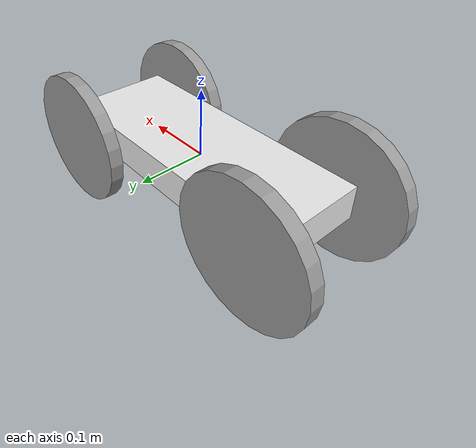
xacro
<?xml version="1.0"?>
<robot xmlns:xacro="http://www.ros.org/wiki/xacro" name="rover">
  <xacro:property name="wheel_radius" value="0.10" />
  <xacro:property name="wheel_width" value="0.02" />
  <xacro:property name="body_height" value="0.05" />
  <xacro:property name="body_width" value="0.15" />
  <xacro:property name="body_length" value="0.4" />
  <xacro:property name="leg_height" value="0.05" />
  <xacro:property name="leg_width" value="0.02" />
  <xacro:property name="leg_length" value="0.02" />

  <gazebo reference="body">
    <material>Gazebo/White</material>
    <mu1>0.2</mu1>
    <mu2>0.2</mu2>
 </gazebo>

  <link name="body">
    <visual>
      <geometry>
        <box size="${body_length} ${body_width} ${body_height}"/>
      </geometry>
    </visual>

    <collision>
      <geometry>
        <box size="${body_length} ${body_width} ${body_height}"/>
      </geometry>
    </collision>

    <inertial>
      <mass value="5"/>
      <inertia ixx="${(5/12) * (body_width * body_width + body_height* body_height)}" ixy="0" ixz="0" iyy="${(5/12) * (body_length * body_length + body_height * body_height)}" iyz="0" izz="${(5/12) * (body_width * body_width + body_length * body_length)}" />
    </inertial>
  </link>

  <link name="lLeg">
    <visual>
      <geometry>
        <box size="${leg_length} ${leg_width} ${leg_height}"/>
      </geometry>
    </visual>

    <collision>
      <geometry>
        <box size="${leg_length} ${leg_width} ${leg_height}"/>
      </geometry>
    </collision>

    <inertial>
      <mass value="1"/>
      <inertia ixx="${(1/12) * (leg_width * leg_width + leg_height* leg_height)}" ixy="0" ixz="0" iyy="${(1/12) * (leg_length * leg_length + leg_height * leg_height)}" iyz="0" izz="${(1/12) * (leg_width * leg_width + leg_length * leg_length)}" />
    </inertial>
  </link>

  <joint name="lDifJoint" type="continuous">
    <parent link="body"/>
    <child link="lLeg"/>
    <axis xyz="0 0 1"/>
    <origin xyz="${body_length/2 - 0.03} ${body_width/2 + wheel_width/2} -${body_height/2}"/>
  </joint>

  <link name="rLeg">
    <visual>
      <geometry>
        <box size="${leg_length} ${leg_width} ${leg_height}"/>
      </geometry>
    </visual>

    <collision>
      <geometry>
        <box size="${leg_length} ${leg_width} ${leg_height}"/>
      </geometry>
    </collision>

    <inertial>
      <mass value="1"/>
      <inertia ixx="${(1/12) * (leg_width * leg_width + leg_height* leg_height)}" ixy="0" ixz="0" iyy="${(1/12) * (leg_length * leg_length + leg_height * leg_height)}" iyz="0" izz="${(1/12) * (leg_width * leg_width + leg_length * leg_length)}" />
    </inertial>
  </link>

  <joint name="rDifJoint" type="continuous">
    <parent link="body"/>
    <child link="rLeg"/>
    <axis xyz="0 0 1"/>
    <origin xyz="${body_length/2 - 0.03} -${body_width/2 + wheel_width/2} -${body_height/2}"/>
  </joint>

  <xacro:macro name="wheel_link" params="name radius width mass">
    <gazebo reference="${name}">
      <material>Gazebo/Grey</material>
      <mu1>0.84</mu1>
      <mu2>0.84</mu2>
   </gazebo>

    <link name="${name}">
      <visual>
        <geometry>
          <cylinder length="${width}" radius="${radius}"/>
        </geometry>
      </visual>

      <collision>
        <geometry>
          <cylinder length="${width}" radius="${radius}"/>
        </geometry>
      </collision>

      <inertial>
        <mass value="${mass}"/>
        <inertia ixx="${(1/12) * mass * (3 * radius * radius + width * width)}" ixy="0" ixz="0" iyy="${(1/12) * mass * (3 * radius * radius + width * width)}" iyz="0" izz="${(1/2) * mass * radius * radius}"/>
      </inertial>
    </link>
  </xacro:macro>

  <xacro:wheel_link name="wFL" radius="${wheel_radius}" width="${wheel_width}" mass="2"/>

  <joint name="jFL" type="continuous">
    <parent link="lLeg"/>
    <child link="wFL"/>
    <axis xyz="0 0 1"/>
    <origin xyz="0 ${leg_width/2} ${leg_length/2}" rpy="${pi/2} 0 0" />
    <dynamics friction="0.5"/>
  </joint>

  <xacro:wheel_link name="wBL" radius="${wheel_radius}" width="${wheel_width}" mass="2"/>

  <joint name="jBL" type="continuous">
    <parent link="body"/>
    <child link="wBL"/>
    <axis xyz="0 0 1"/>
    <origin xyz="-${body_length/2 - 0.03} ${body_width/2 + wheel_width/2} 0" rpy="${pi/2} 0 0" />
    <dynamics friction="0.5"/>
  </joint>

  <xacro:wheel_link name="wFR" radius="${wheel_radius}" width="${wheel_width}" mass="2"/>

  <joint name="jFR" type="continuous">
    <parent link="rLeg"/>
    <child link="wFR"/>
    <axis xyz="0 0 1"/>
    <origin xyz="0 -${leg_width/2} ${leg_length/2}" rpy="${pi/2} 0 0" />
    <dynamics friction="0.5"/>
  </joint>

  <xacro:wheel_link name="wBR" radius="${wheel_radius}" width="${wheel_width}" mass="2"/>

  <joint name="jBR" type="continuous">
    <parent link="body"/>
    <child link="wBR"/>
    <axis xyz="0 0 1"/>
    <origin xyz="-${body_length/2 - 0.03} -${body_width/2 + wheel_width/2} 0" rpy="${pi/2} 0 0" />
    <dynamics friction="0.5"/>
  </joint>

  <gazebo>
    <plugin name="rover_plugin" filename="librover_plugin.so"> </plugin>
  </gazebo>
</robot>
